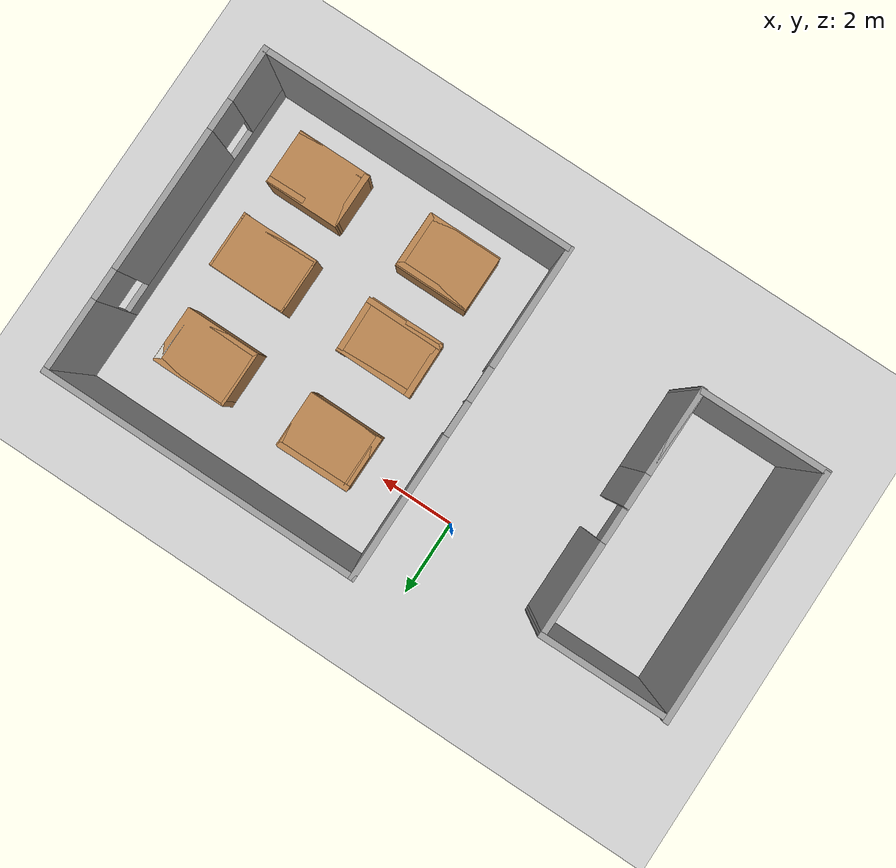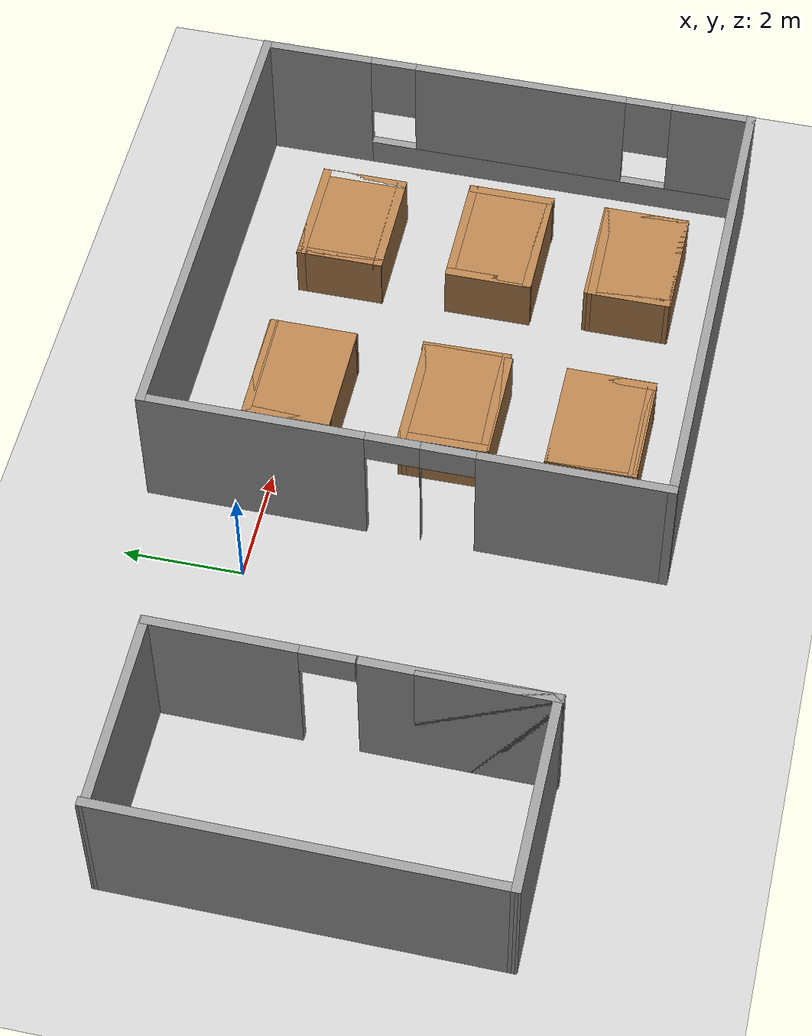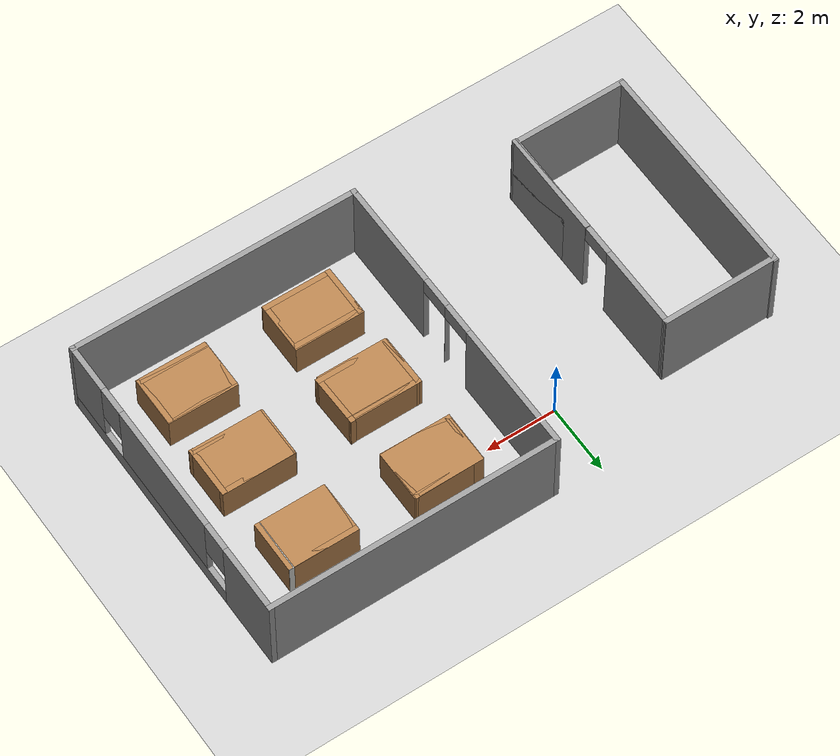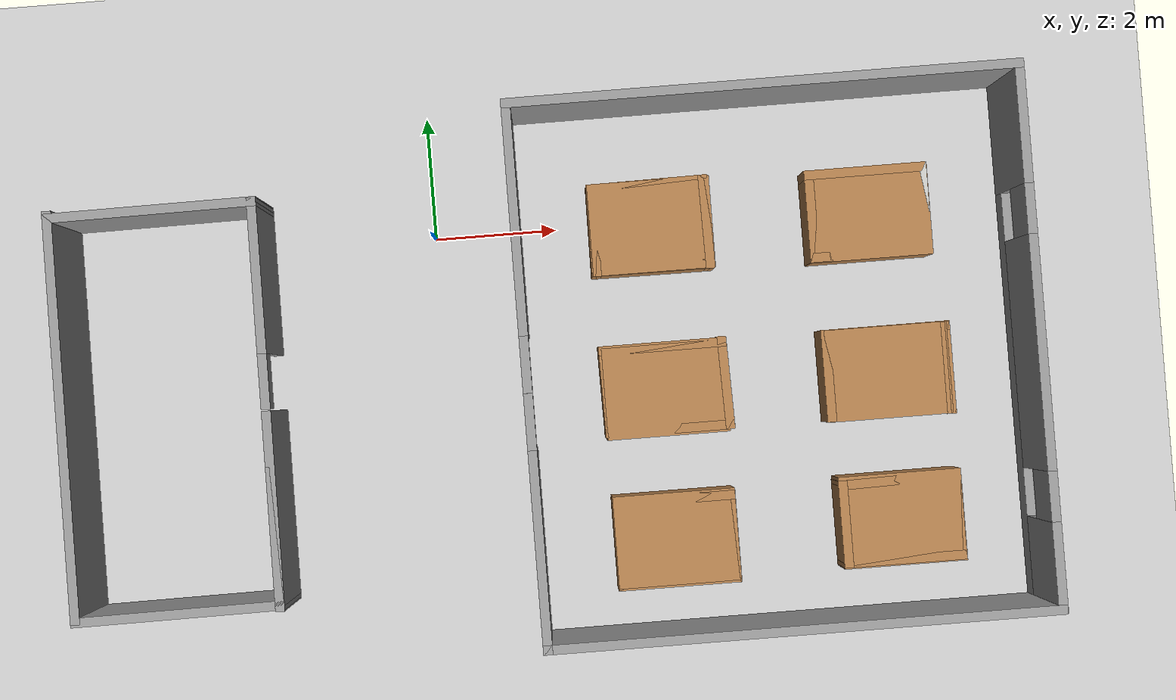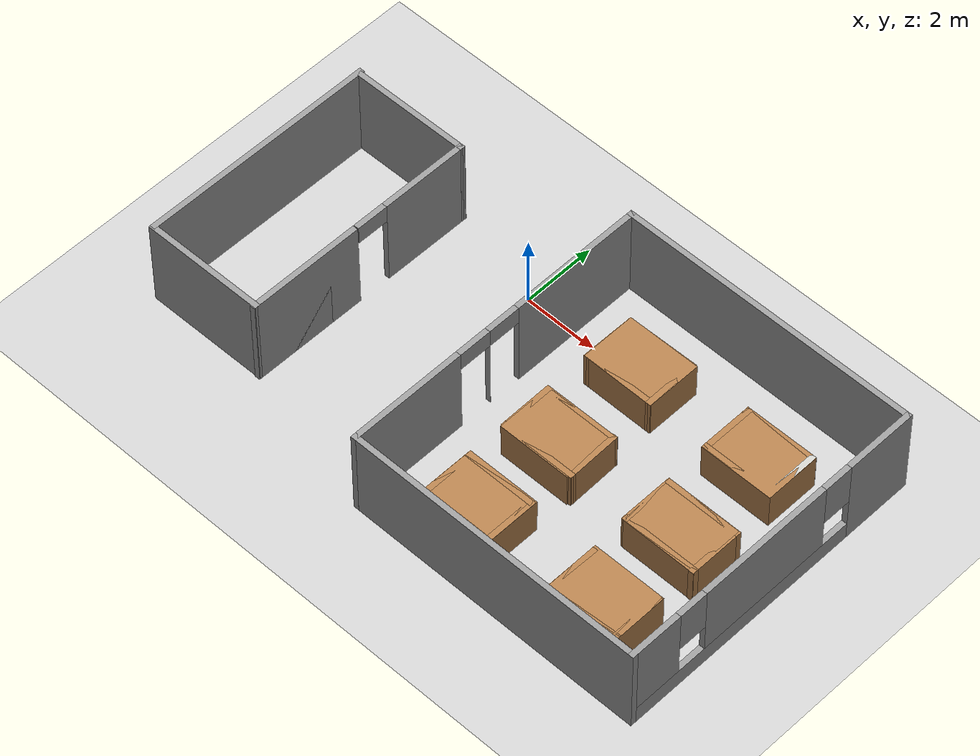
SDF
<sdf version="1.7">
 <world name="default">
  <light name="sun" type="directional">
   <pose>0 0 10 0 -0 0</pose>
   <diffuse>0.8 0.8 0.8 1</diffuse>
   <specular>0.2 0.2 0.2 1</specular>
   <attenuation>
    <range>1000</range>
    <constant>0.9</constant>
    <linear>0.01</linear>
    <quadratic>0.001</quadratic>
   </attenuation>
   <direction>-0.5 0.1 -0.9</direction>
   <spot><inner_angle>0</inner_angle><outer_angle>0</outer_angle><falloff>0</falloff></spot>
  </light>
  <model name="ground_plane">
   <static>1</static>
   <link name="link">
    <collision name="collision">
     <geometry><plane><normal>0 0 1</normal><size>100 100</size></plane></geometry>
     <surface>
      <contact><collide_bitmask>65535</collide_bitmask></contact>
      <friction><ode><mu>100</mu><mu2>50</mu2></ode></friction>
     </surface>
    </collision>
    <visual name="visual">
     <cast_shadows>0</cast_shadows>
     <geometry><plane><normal>0 0 1</normal><size>100 100</size></plane></geometry>
     <material>
      <script><uri>file://media/materials/scripts/gazebo.material</uri><name>Gazebo/Grey</name></script>
     </material>
    </visual>
   </link>
  </model>
  <gravity>0 0 -9.8</gravity>
  <magnetic_field>6e-06 2.3e-05 -4.2e-05</magnetic_field>
  <atmosphere type="adiabatic"/>
  <physics type="ode">
   <max_step_size>0.001</max_step_size>
   <real_time_factor>1</real_time_factor>
   <real_time_update_rate>1000</real_time_update_rate>
  </physics>
  <scene><ambient>0.4 0.4 0.4 1</ambient><background>0.7 0.7 0.7 1</background><shadows>1</shadows></scene>
  <spherical_coordinates>
   <surface_model>EARTH_WGS84</surface_model>
   <latitude_deg>0</latitude_deg>
   <longitude_deg>0</longitude_deg>
   <elevation>0</elevation>
   <heading_deg>0</heading_deg>
  </spherical_coordinates>
  <model name="my_factory_0">
   <pose>4.13468 -2.67349 0 0 -0 0</pose>
   <link name="Wall_0">
    <collision name="Wall_0_Collision">
     <geometry><box><size>1.50004 0.15 1</size></box></geometry>
     <pose>0 0 0.5 0 -0 0</pose>
    </collision>
    <visual name="Wall_0_Visual">
     <pose>0 0 0.5 0 -0 0</pose>
     <geometry><box><size>1.50004 0.15 1</size></box></geometry>
     <material>
      <script><uri>file://media/materials/scripts/gazebo.material</uri><name>Gazebo/Wood</name></script>
      <ambient>1 1 1 1</ambient>
     </material>
     <meta><layer>0</layer></meta>
    </visual>
    <pose>-1.52968 2.55849 0 0 -0 -1.5782</pose>
   </link>
   <link name="Wall_1">
    <collision name="Wall_1_Collision">
     <geometry><box><size>2.01003 0.15 1</size></box></geometry>
     <pose>0 0 0.5 0 -0 0</pose>
    </collision>
    <visual name="Wall_1_Visual">
     <pose>0 0 0.5 0 -0 0</pose>
     <geometry><box><size>2.01003 0.15 1</size></box></geometry>
     <material>
      <script><uri>file://media/materials/scripts/gazebo.material</uri><name>Gazebo/Wood</name></script>
      <ambient>1 1 1 1</ambient>
     </material>
     <meta><layer>0</layer></meta>
    </visual>
    <pose>-0.604678 1.87849 0 0 -0 -0.005376</pose>
   </link>
   <link name="Wall_10">
    <collision name="Wall_10_Collision">
     <geometry><box><size>1.5 0.15 1</size></box></geometry>
     <pose>0 0 0.5 0 -0 0</pose>
    </collision>
    <visual name="Wall_10_Visual">
     <pose>0 0 0.5 0 -0 0</pose>
     <geometry><box><size>1.5 0.15 1</size></box></geometry>
     <material>
      <script><uri>file://media/materials/scripts/gazebo.material</uri><name>Gazebo/Wood</name></script>
      <ambient>1 1 1 1</ambient>
     </material>
     <meta><layer>0</layer></meta>
    </visual>
    <pose>2.03532 2.50849 0 0 -0 -1.5708</pose>
   </link>
   <link name="Wall_12">
    <collision name="Wall_12_Collision">
     <geometry><box><size>1.5 0.15 1</size></box></geometry>
     <pose>0 0 0.5 0 -0 0</pose>
    </collision>
    <visual name="Wall_12_Visual">
     <pose>0 0 0.5 0 -0 0</pose>
     <geometry><box><size>1.5 0.15 1</size></box></geometry>
     <material>
      <script><uri>file://media/materials/scripts/gazebo.material</uri><name>Gazebo/Wood</name></script>
      <ambient>1 1 1 1</ambient>
     </material>
     <meta><layer>0</layer></meta>
    </visual>
    <pose>-1.52115 -0.087133 0 0 -0 -1.55871</pose>
   </link>
   <link name="Wall_13">
    <collision name="Wall_13_Collision">
     <geometry><box><size>2.10581 0.15 1</size></box></geometry>
     <pose>0 0 0.5 0 -0 0</pose>
    </collision>
    <visual name="Wall_13_Visual">
     <pose>0 0 0.5 0 -0 0</pose>
     <geometry><box><size>2.10581 0.15 1</size></box></geometry>
     <material>
      <script><uri>file://media/materials/scripts/gazebo.material</uri><name>Gazebo/Wood</name></script>
      <ambient>1 1 1 1</ambient>
     </material>
     <meta><layer>0</layer></meta>
    </visual>
    <pose>-0.53521 -0.762133 0 0 -0 -5e-05</pose>
   </link>
   <link name="Wall_14">
    <collision name="Wall_14_Collision">
     <geometry><box><size>1.5 0.15 1</size></box></geometry>
     <pose>0 0 0.5 0 -0 0</pose>
    </collision>
    <visual name="Wall_14_Visual">
     <pose>0 0 0.5 0 -0 0</pose>
     <geometry><box><size>1.5 0.15 1</size></box></geometry>
     <material>
      <script><uri>file://media/materials/scripts/gazebo.material</uri><name>Gazebo/Wood</name></script>
      <ambient>1 1 1 1</ambient>
     </material>
     <meta><layer>0</layer></meta>
    </visual>
    <pose>0.425959 -0.072178 0 0 -0 1.59541</pose>
   </link>
   <link name="Wall_15">
    <collision name="Wall_15_Collision">
     <geometry><box><size>2.08889 0.15 1</size></box></geometry>
     <pose>0 0 0.5 0 -0 0</pose>
    </collision>
    <visual name="Wall_15_Visual">
     <pose>0 0 0.5 0 -0 0</pose>
     <geometry><box><size>2.08889 0.15 1</size></box></geometry>
     <material>
      <script><uri>file://media/materials/scripts/gazebo.material</uri><name>Gazebo/Wood</name></script>
      <ambient>1 1 1 1</ambient>
     </material>
     <meta><layer>0</layer></meta>
    </visual>
    <pose>-0.55998 0.587613 0 0 -0 3.14138</pose>
   </link>
   <link name="Wall_17">
    <collision name="Wall_17_Collision">
     <geometry><box><size>1.5 0.15 1</size></box></geometry>
     <pose>0 0 0.5 0 -0 0</pose>
    </collision>
    <visual name="Wall_17_Visual">
     <pose>0 0 0.5 0 -0 0</pose>
     <geometry><box><size>1.5 0.15 1</size></box></geometry>
     <material>
      <script><uri>file://media/materials/scripts/gazebo.material</uri><name>Gazebo/Wood</name></script>
      <ambient>1 1 1 1</ambient>
     </material>
     <meta><layer>0</layer></meta>
    </visual>
    <pose>2.10253 -0.105018 0 0 -0 -1.5708</pose>
   </link>
   <link name="Wall_18">
    <collision name="Wall_18_Collision">
     <geometry><box><size>2.09221 0.15 1</size></box></geometry>
     <pose>0 0 0.5 0 -0 0</pose>
    </collision>
    <visual name="Wall_18_Visual">
     <pose>0 0 0.5 0 -0 0</pose>
     <geometry><box><size>2.09221 0.15 1</size></box></geometry>
     <material>
      <script><uri>file://media/materials/scripts/gazebo.material</uri><name>Gazebo/Wood</name></script>
      <ambient>1 1 1 1</ambient>
     </material>
     <meta><layer>0</layer></meta>
    </visual>
    <pose>3.08857 -0.780017 0 0 -0 0</pose>
   </link>
   <link name="Wall_19">
    <collision name="Wall_19_Collision">
     <geometry><box><size>1.5 0.15 1</size></box></geometry>
     <pose>0 0 0.5 0 -0 0</pose>
    </collision>
    <visual name="Wall_19_Visual">
     <pose>0 0 0.5 0 -0 0</pose>
     <geometry><box><size>1.5 0.15 1</size></box></geometry>
     <material>
      <script><uri>file://media/materials/scripts/gazebo.material</uri><name>Gazebo/Wood</name></script>
      <ambient>1 1 1 1</ambient>
     </material>
     <meta><layer>0</layer></meta>
    </visual>
    <pose>4.05941 -0.120226 0 0 -0 1.5708</pose>
   </link>
   <link name="Wall_2">
    <collision name="Wall_2_Collision">
     <geometry><box><size>1.53004 0.15 1</size></box></geometry>
     <pose>0 0 0.5 0 -0 0</pose>
    </collision>
    <visual name="Wall_2_Visual">
     <pose>0 0 0.5 0 -0 0</pose>
     <geometry><box><size>1.53004 0.15 1</size></box></geometry>
     <material>
      <script><uri>file://media/materials/scripts/gazebo.material</uri><name>Gazebo/Wood</name></script>
      <ambient>1 1 1 1</ambient>
     </material>
     <meta><layer>0</layer></meta>
    </visual>
    <pose>0.315322 2.56349 0 0 -0 1.58529</pose>
   </link>
   <link name="Wall_20">
    <collision name="Wall_20_Collision">
     <geometry><box><size>2.09221 0.15 1</size></box></geometry>
     <pose>0 0 0.5 0 -0 0</pose>
    </collision>
    <visual name="Wall_20_Visual">
     <pose>0 0 0.5 0 -0 0</pose>
     <geometry><box><size>2.09221 0.15 1</size></box></geometry>
     <material>
      <script><uri>file://media/materials/scripts/gazebo.material</uri><name>Gazebo/Wood</name></script>
      <ambient>1 1 1 1</ambient>
     </material>
     <meta><layer>0</layer></meta>
    </visual>
    <pose>3.08857 0.569983 0 0 -0 3.14159</pose>
   </link>
   <link name="Wall_22">
    <collision name="Wall_22_Collision">
     <geometry><box><size>1.5 0.15 1</size></box></geometry>
     <pose>0 0 0.5 0 -0 0</pose>
    </collision>
    <visual name="Wall_22_Visual">
     <pose>0 0 0.5 0 -0 0</pose>
     <geometry><box><size>1.5 0.15 1</size></box></geometry>
     <material>
      <script><uri>file://media/materials/scripts/gazebo.material</uri><name>Gazebo/Wood</name></script>
      <ambient>1 1 1 1</ambient>
     </material>
     <meta><layer>0</layer></meta>
    </visual>
    <pose>-1.49768 -2.57951 0 0 -0 -1.5708</pose>
   </link>
   <link name="Wall_23">
    <collision name="Wall_23_Collision">
     <geometry><box><size>2 0.15 1</size></box></geometry>
     <pose>0 0 0.5 0 -0 0</pose>
    </collision>
    <visual name="Wall_23_Visual">
     <pose>0 0 0.5 0 -0 0</pose>
     <geometry><box><size>2 0.15 1</size></box></geometry>
     <material>
      <script><uri>file://media/materials/scripts/gazebo.material</uri><name>Gazebo/Wood</name></script>
      <ambient>1 1 1 1</ambient>
     </material>
     <meta><layer>0</layer></meta>
    </visual>
    <pose>-0.572678 -3.25451 0 0 -0 0</pose>
   </link>
   <link name="Wall_24">
    <collision name="Wall_24_Collision">
     <geometry><box><size>1.5 0.15 1</size></box></geometry>
     <pose>0 0 0.5 0 -0 0</pose>
    </collision>
    <visual name="Wall_24_Visual">
     <pose>0 0 0.5 0 -0 0</pose>
     <geometry><box><size>1.5 0.15 1</size></box></geometry>
     <material>
      <script><uri>file://media/materials/scripts/gazebo.material</uri><name>Gazebo/Wood</name></script>
      <ambient>1 1 1 1</ambient>
     </material>
     <meta><layer>0</layer></meta>
    </visual>
    <pose>0.352322 -2.57951 0 0 -0 1.5708</pose>
   </link>
   <link name="Wall_25">
    <collision name="Wall_25_Collision">
     <geometry><box><size>2 0.15 1</size></box></geometry>
     <pose>0 0 0.5 0 -0 0</pose>
    </collision>
    <visual name="Wall_25_Visual">
     <pose>0 0 0.5 0 -0 0</pose>
     <geometry><box><size>2 0.15 1</size></box></geometry>
     <material>
      <script><uri>file://media/materials/scripts/gazebo.material</uri><name>Gazebo/Wood</name></script>
      <ambient>1 1 1 1</ambient>
     </material>
     <meta><layer>0</layer></meta>
    </visual>
    <pose>-0.572678 -1.90451 0 0 -0 3.14159</pose>
   </link>
   <link name="Wall_27">
    <collision name="Wall_27_Collision">
     <geometry><box><size>1.42107 0.15 1</size></box></geometry>
     <pose>0 0 0.5 0 -0 0</pose>
    </collision>
    <visual name="Wall_27_Visual">
     <pose>0 0 0.5 0 -0 0</pose>
     <geometry><box><size>1.42107 0.15 1</size></box></geometry>
     <material>
      <script><uri>file://media/materials/scripts/gazebo.material</uri><name>Gazebo/Wood</name></script>
      <ambient>1 1 1 1</ambient>
     </material>
     <meta><layer>0</layer></meta>
    </visual>
    <pose>2.19048 -2.53198 0 0 -0 -1.57104</pose>
   </link>
   <link name="Wall_28">
    <collision name="Wall_28_Collision">
     <geometry><box><size>2 0.15 1</size></box></geometry>
     <pose>0 0 0.5 0 -0 0</pose>
    </collision>
    <visual name="Wall_28_Visual">
     <pose>0 0 0.5 0 -0 0</pose>
     <geometry><box><size>2 0.15 1</size></box></geometry>
     <material>
      <script><uri>file://media/materials/scripts/gazebo.material</uri><name>Gazebo/Wood</name></script>
      <ambient>1 1 1 1</ambient>
     </material>
     <meta><layer>0</layer></meta>
    </visual>
    <pose>3.11532 -3.16951 0 0 -0 -0.002162</pose>
   </link>
   <link name="Wall_29">
    <collision name="Wall_29_Collision">
     <geometry><box><size>1.45885 0.15 1</size></box></geometry>
     <pose>0 0 0.5 0 -0 0</pose>
    </collision>
    <visual name="Wall_29_Visual">
     <pose>0 0 0.5 0 -0 0</pose>
     <geometry><box><size>1.45885 0.15 1</size></box></geometry>
     <material>
      <script><uri>file://media/materials/scripts/gazebo.material</uri><name>Gazebo/Wood</name></script>
      <ambient>1 1 1 1</ambient>
     </material>
     <meta><layer>0</layer></meta>
    </visual>
    <pose>4.04032 -2.51701 0 0 -0 1.5708</pose>
   </link>
   <link name="Wall_3">
    <collision name="Wall_3_Collision">
     <geometry><box><size>1.98011 0.15 1</size></box></geometry>
     <pose>0 0 0.5 0 -0 0</pose>
    </collision>
    <visual name="Wall_3_Visual">
     <pose>0 0 0.5 0 -0 0</pose>
     <geometry><box><size>1.98011 0.15 1</size></box></geometry>
     <material>
      <script><uri>file://media/materials/scripts/gazebo.material</uri><name>Gazebo/Wood</name></script>
      <ambient>1 1 1 1</ambient>
     </material>
     <meta><layer>0</layer></meta>
    </visual>
    <pose>-0.609678 3.24349 0 0 -0 -3.13066</pose>
   </link>
   <link name="Wall_30">
    <collision name="Wall_30_Collision">
     <geometry><box><size>2 0.15 1</size></box></geometry>
     <pose>0 0 0.5 0 -0 0</pose>
    </collision>
    <visual name="Wall_30_Visual">
     <pose>0 0 0.5 0 -0 0</pose>
     <geometry><box><size>2 0.15 1</size></box></geometry>
     <material>
      <script><uri>file://media/materials/scripts/gazebo.material</uri><name>Gazebo/Wood</name></script>
      <ambient>1 1 1 1</ambient>
     </material>
     <meta><layer>0</layer></meta>
    </visual>
    <pose>3.11548 -1.87948 0 0 -0 -3.12325</pose>
   </link>
   <link name="Wall_32">
    <collision name="Wall_32_Collision">
     <geometry><box><size>2 1.5 1</size></box></geometry>
     <pose>0 0 0.5 0 -0 0</pose>
    </collision>
    <visual name="Wall_32_Visual">
     <pose>0 0 0.5 0 -0 0</pose>
     <geometry><box><size>2 1.5 1</size></box></geometry>
     <material>
      <script><uri>file://media/materials/scripts/gazebo.material</uri><name>Gazebo/Wood</name></script>
      <ambient>1 1 1 1</ambient>
     </material>
     <meta><layer>0</layer></meta>
    </visual>
    <pose>-0.567548 -2.54565 0 0 -0 3.14159</pose>
   </link>
   <link name="Wall_34">
    <collision name="Wall_34_Collision">
     <geometry><box><size>2 1.5 1</size></box></geometry>
     <pose>0 0 0.5 0 -0 0</pose>
    </collision>
    <visual name="Wall_34_Visual">
     <pose>0 0 0.5 0 -0 0</pose>
     <geometry><box><size>2 1.5 1</size></box></geometry>
     <material>
      <script><uri>file://media/materials/scripts/gazebo.material</uri><name>Gazebo/Wood</name></script>
      <ambient>1 1 1 1</ambient>
     </material>
     <meta><layer>0</layer></meta>
    </visual>
    <pose>3.12232 -2.51251 0 0 -0 0</pose>
   </link>
   <link name="Wall_36">
    <collision name="Wall_36_Collision">
     <geometry><box><size>2 1.5 1</size></box></geometry>
     <pose>0 0 0.5 0 -0 0</pose>
    </collision>
    <visual name="Wall_36_Visual">
     <pose>0 0 0.5 0 -0 0</pose>
     <geometry><box><size>2 1.5 1</size></box></geometry>
     <material>
      <script><uri>file://media/materials/scripts/gazebo.material</uri><name>Gazebo/Wood</name></script>
      <ambient>1 1 1 1</ambient>
     </material>
     <meta><layer>0</layer></meta>
    </visual>
    <pose>2.96496 2.49763 0 0 -0 0</pose>
   </link>
   <link name="Wall_38">
    <collision name="Wall_38_Collision">
     <geometry><box><size>2 1.5 1</size></box></geometry>
     <pose>0 0 0.5 0 -0 0</pose>
    </collision>
    <visual name="Wall_38_Visual">
     <pose>0 0 0.5 0 -0 0</pose>
     <geometry><box><size>2 1.5 1</size></box></geometry>
     <material>
      <script><uri>file://media/materials/scripts/gazebo.material</uri><name>Gazebo/Wood</name></script>
      <ambient>1 1 1 1</ambient>
     </material>
     <meta><layer>0</layer></meta>
    </visual>
    <pose>-0.561678 -0.121513 0 0 -0 0</pose>
   </link>
   <link name="Wall_40">
    <collision name="Wall_40_Collision">
     <geometry><box><size>2 1.5 1</size></box></geometry>
     <pose>0 0 0.5 0 -0 0</pose>
    </collision>
    <visual name="Wall_40_Visual">
     <pose>0 0 0.5 0 -0 0</pose>
     <geometry><box><size>2 1.5 1</size></box></geometry>
     <material>
      <script><uri>file://media/materials/scripts/gazebo.material</uri><name>Gazebo/Wood</name></script>
      <ambient>1 1 1 1</ambient>
     </material>
     <meta><layer>0</layer></meta>
    </visual>
    <pose>3.08032 -0.112512 0 0 -0 0</pose>
   </link>
   <link name="Wall_42">
    <collision name="Wall_42_Collision">
     <geometry><box><size>2 1.5 1</size></box></geometry>
     <pose>0 0 0.5 0 -0 0</pose>
    </collision>
    <visual name="Wall_42_Visual">
     <pose>0 0 0.5 0 -0 0</pose>
     <geometry><box><size>2 1.5 1</size></box></geometry>
     <material>
      <script><uri>file://media/materials/scripts/gazebo.material</uri><name>Gazebo/Wood</name></script>
      <ambient>1 1 1 1</ambient>
     </material>
     <meta><layer>0</layer></meta>
    </visual>
    <pose>-0.591557 2.56093 0 0 -0 0</pose>
   </link>
   <link name="Wall_7">
    <collision name="Wall_7_Collision">
     <geometry><box><size>2 0.15 1</size></box></geometry>
     <pose>0 0 0.5 0 -0 0</pose>
    </collision>
    <visual name="Wall_7_Visual">
     <pose>0 0 0.5 0 -0 0</pose>
     <geometry><box><size>2 0.15 1</size></box></geometry>
     <material>
      <script><uri>file://media/materials/scripts/gazebo.material</uri><name>Gazebo/Wood</name></script>
      <ambient>1 1 1 1</ambient>
     </material>
     <meta><layer>0</layer></meta>
    </visual>
    <pose>2.96032 1.83349 0 0 -0 0</pose>
   </link>
   <link name="Wall_8">
    <collision name="Wall_8_Collision">
     <geometry><box><size>1.5 0.15 1</size></box></geometry>
     <pose>0 0 0.5 0 -0 0</pose>
    </collision>
    <visual name="Wall_8_Visual">
     <pose>0 0 0.5 0 -0 0</pose>
     <geometry><box><size>1.5 0.15 1</size></box></geometry>
     <material>
      <script><uri>file://media/materials/scripts/gazebo.material</uri><name>Gazebo/CeilingTiled</name></script>
      <ambient>1 1 1 1</ambient>
     </material>
     <meta><layer>0</layer></meta>
    </visual>
    <pose>3.88532 2.50849 0 0 -0 1.5708</pose>
   </link>
   <link name="Wall_9">
    <collision name="Wall_9_Collision">
     <geometry><box><size>2 0.15 1</size></box></geometry>
     <pose>0 0 0.5 0 -0 0</pose>
    </collision>
    <visual name="Wall_9_Visual">
     <pose>0 0 0.5 0 -0 0</pose>
     <geometry><box><size>2 0.15 1</size></box></geometry>
     <material>
      <script><uri>file://media/materials/scripts/gazebo.material</uri><name>Gazebo/Wood</name></script>
      <ambient>1 1 1 1</ambient>
     </material>
     <meta><layer>0</layer></meta>
    </visual>
    <pose>2.96032 3.18349 0 0 -0 3.14159</pose>
   </link>
   <static>1</static>
  </model>
  <model name="my_factory">
   <link name="Wall_0">
    <pose>-6.08439 3.06531 0 0 -0 0.006251</pose>
    <visual name="Wall_0_Visual">
     <pose>0 0 1.25 0 -0 0</pose>
     <geometry><box><size>3.36779 0.15 2.5</size></box></geometry>
     <material>
      <script><uri>file://media/materials/scripts/gazebo.material</uri><name>Gazebo/Grey</name></script>
      <ambient>1 1 1 1</ambient>
      <shader type="pixel"/>
     </material>
     <meta><layer>0</layer></meta>
    </visual>
    <collision name="Wall_0_Collision">
     <pose>0 0 1.25 0 -0 0</pose>
     <geometry><box><size>3.36779 0.15 2.5</size></box></geometry>
     <surface>
      <friction>
       <ode><mu>1</mu><mu2>1</mu2><fdir1>0 0 0</fdir1><slip1>0</slip1><slip2>0</slip2></ode>
       <torsional>
        <coefficient>1</coefficient>
        <patch_radius>0</patch_radius>
        <surface_radius>0</surface_radius>
        <use_patch_radius>1</use_patch_radius>
        <ode><slip>0</slip></ode>
       </torsional>
      </friction>
      <bounce><restitution_coefficient>0</restitution_coefficient><threshold>1e+06</threshold></bounce>
      <contact>
       <collide_without_contact>0</collide_without_contact>
       <collide_without_contact_bitmask>1</collide_without_contact_bitmask>
       <collide_bitmask>1</collide_bitmask>
       <ode>
        <soft_cfm>0</soft_cfm>
        <soft_erp>0.2</soft_erp>
        <kp>1e+13</kp>
        <kd>1</kd>
        <max_vel>0.01</max_vel>
        <min_depth>0</min_depth>
       </ode>
       <bullet>
        <split_impulse>1</split_impulse>
        <split_impulse_penetration_threshold>-0.01</split_impulse_penetration_threshold>
        <soft_cfm>0</soft_cfm>
        <soft_erp>0.2</soft_erp>
        <kp>1e+13</kp>
        <kd>1</kd>
       </bullet>
      </contact>
     </surface>
    </collision>
   </link>
   <link name="Wall_1">
    <pose>-4.49073 -0.119515 0 0 0 -1.57559</pose>
    <visual name="Wall_1_Visual_0">
     <pose>-2.02411 0 1.25 0 -0 0</pose>
     <geometry><box><size>2.45141 0.15 2.5</size></box></geometry>
     <material>
      <script><uri>file://media/materials/scripts/gazebo.material</uri><name>Gazebo/Grey</name></script>
      <ambient>1 1 1 1</ambient>
      <shader type="pixel"/>
     </material>
     <meta><layer>0</layer></meta>
    </visual>
    <visual name="Wall_1_Visual_1">
     <pose>1.6757 0 1.25 0 -0 0</pose>
     <geometry><box><size>3.14821 0.15 2.5</size></box></geometry>
     <material>
      <script><uri>file://media/materials/scripts/gazebo.material</uri><name>Gazebo/Grey</name></script>
      <ambient>1 1 1 1</ambient>
      <shader type="pixel"/>
     </material>
     <meta><layer>0</layer></meta>
    </visual>
    <visual name="Wall_1_Visual_2">
     <pose>2.11518 0 1.25 0 -0 0</pose>
     <geometry><box><size>2.26926 0.15 2.5</size></box></geometry>
     <material>
      <script><uri>file://media/materials/scripts/gazebo.material</uri><name>Gazebo/Grey</name></script>
      <ambient>1 1 1 1</ambient>
      <shader type="pixel"/>
     </material>
     <meta><layer>0</layer></meta>
    </visual>
    <visual name="Wall_1_Visual_3">
     <pose>-0.358925 0 2.25 0 -0 0</pose>
     <geometry><box><size>0.878953 0.15 0.5</size></box></geometry>
     <material>
      <script><uri>file://media/materials/scripts/gazebo.material</uri><name>Gazebo/Grey</name></script>
      <ambient>1 1 1 1</ambient>
      <shader type="pixel"/>
     </material>
     <meta><layer>0</layer></meta>
    </visual>
    <collision name="Wall_1_Collision_0">
     <pose>-2.02411 0 1.25 0 -0 0</pose>
     <geometry><box><size>2.45141 0.15 2.5</size></box></geometry>
     <surface>
      <friction>
       <ode><mu>1</mu><mu2>1</mu2><fdir1>0 0 0</fdir1><slip1>0</slip1><slip2>0</slip2></ode>
       <torsional>
        <coefficient>1</coefficient>
        <patch_radius>0</patch_radius>
        <surface_radius>0</surface_radius>
        <use_patch_radius>1</use_patch_radius>
        <ode><slip>0</slip></ode>
       </torsional>
      </friction>
      <bounce><restitution_coefficient>0</restitution_coefficient><threshold>1e+06</threshold></bounce>
      <contact>
       <collide_without_contact>0</collide_without_contact>
       <collide_without_contact_bitmask>1</collide_without_contact_bitmask>
       <collide_bitmask>1</collide_bitmask>
       <ode>
        <soft_cfm>0</soft_cfm>
        <soft_erp>0.2</soft_erp>
        <kp>1e+13</kp>
        <kd>1</kd>
        <max_vel>0.01</max_vel>
        <min_depth>0</min_depth>
       </ode>
       <bullet>
        <split_impulse>1</split_impulse>
        <split_impulse_penetration_threshold>-0.01</split_impulse_penetration_threshold>
        <soft_cfm>0</soft_cfm>
        <soft_erp>0.2</soft_erp>
        <kp>1e+13</kp>
        <kd>1</kd>
       </bullet>
      </contact>
     </surface>
    </collision>
    <collision name="Wall_1_Collision_1">
     <pose>1.6757 0 1.25 0 -0 0</pose>
     <geometry><box><size>3.14821 0.15 2.5</size></box></geometry>
     <surface>
      <friction>
       <ode><mu>1</mu><mu2>1</mu2><fdir1>0 0 0</fdir1><slip1>0</slip1><slip2>0</slip2></ode>
       <torsional>
        <coefficient>1</coefficient>
        <patch_radius>0</patch_radius>
        <surface_radius>0</surface_radius>
        <use_patch_radius>1</use_patch_radius>
        <ode><slip>0</slip></ode>
       </torsional>
      </friction>
      <bounce><restitution_coefficient>0</restitution_coefficient><threshold>1e+06</threshold></bounce>
      <contact>
       <collide_without_contact>0</collide_without_contact>
       <collide_without_contact_bitmask>1</collide_without_contact_bitmask>
       <collide_bitmask>1</collide_bitmask>
       <ode>
        <soft_cfm>0</soft_cfm>
        <soft_erp>0.2</soft_erp>
        <kp>1e+13</kp>
        <kd>1</kd>
        <max_vel>0.01</max_vel>
        <min_depth>0</min_depth>
       </ode>
       <bullet>
        <split_impulse>1</split_impulse>
        <split_impulse_penetration_threshold>-0.01</split_impulse_penetration_threshold>
        <soft_cfm>0</soft_cfm>
        <soft_erp>0.2</soft_erp>
        <kp>1e+13</kp>
        <kd>1</kd>
       </bullet>
      </contact>
     </surface>
    </collision>
    <collision name="Wall_1_Collision_3">
     <pose>-0.358925 0 2.25 0 -0 0</pose>
     <geometry><box><size>0.878953 0.15 0.5</size></box></geometry>
     <surface>
      <friction>
       <ode><mu>1</mu><mu2>1</mu2><fdir1>0 0 0</fdir1><slip1>0</slip1><slip2>0</slip2></ode>
       <torsional>
        <coefficient>1</coefficient>
        <patch_radius>0</patch_radius>
        <surface_radius>0</surface_radius>
        <use_patch_radius>1</use_patch_radius>
        <ode><slip>0</slip></ode>
       </torsional>
      </friction>
      <bounce><restitution_coefficient>0</restitution_coefficient><threshold>1e+06</threshold></bounce>
      <contact>
       <collide_without_contact>0</collide_without_contact>
       <collide_without_contact_bitmask>1</collide_without_contact_bitmask>
       <collide_bitmask>1</collide_bitmask>
       <ode>
        <soft_cfm>0</soft_cfm>
        <soft_erp>0.2</soft_erp>
        <kp>1e+13</kp>
        <kd>1</kd>
        <max_vel>0.01</max_vel>
        <min_depth>0</min_depth>
       </ode>
       <bullet>
        <split_impulse>1</split_impulse>
        <split_impulse_penetration_threshold>-0.01</split_impulse_penetration_threshold>
        <soft_cfm>0</soft_cfm>
        <soft_erp>0.2</soft_erp>
        <kp>1e+13</kp>
        <kd>1</kd>
       </bullet>
      </contact>
     </surface>
    </collision>
    <collision name="Wall_1_Collision_2">
     <pose>2.11518 0 1.25 0 -0 0</pose>
     <geometry><box><size>2.26926 0.15 2.5</size></box></geometry>
     <surface>
      <friction>
       <ode><mu>1</mu><mu2>1</mu2><fdir1>0 0 0</fdir1><slip1>0</slip1><slip2>0</slip2></ode>
       <torsional>
        <coefficient>1</coefficient>
        <patch_radius>0</patch_radius>
        <surface_radius>0</surface_radius>
        <use_patch_radius>1</use_patch_radius>
        <ode><slip>0</slip></ode>
       </torsional>
      </friction>
      <bounce><restitution_coefficient>0</restitution_coefficient><threshold>1e+06</threshold></bounce>
      <contact>
       <collide_without_contact>0</collide_without_contact>
       <collide_without_contact_bitmask>1</collide_without_contact_bitmask>
       <collide_bitmask>1</collide_bitmask>
       <ode>
        <soft_cfm>0</soft_cfm>
        <soft_erp>0.2</soft_erp>
        <kp>1e+13</kp>
        <kd>1</kd>
        <max_vel>0.01</max_vel>
        <min_depth>0</min_depth>
       </ode>
       <bullet>
        <split_impulse>1</split_impulse>
        <split_impulse_penetration_threshold>-0.01</split_impulse_penetration_threshold>
        <soft_cfm>0</soft_cfm>
        <soft_erp>0.2</soft_erp>
        <kp>1e+13</kp>
        <kd>1</kd>
       </bullet>
      </contact>
     </surface>
    </collision>
   </link>
   <link name="Wall_2">
    <pose>-6.11481 -3.28423 0 0 0 -3.13534</pose>
    <visual name="Wall_2_Visual">
     <pose>0 0 1.25 0 -0 0</pose>
     <geometry><box><size>3.36779 0.15 2.5</size></box></geometry>
     <material>
      <script><uri>file://media/materials/scripts/gazebo.material</uri><name>Gazebo/Grey</name></script>
      <ambient>1 1 1 1</ambient>
      <shader type="pixel"/>
     </material>
     <meta><layer>0</layer></meta>
    </visual>
    <collision name="Wall_2_Collision">
     <pose>0 0 1.25 0 -0 0</pose>
     <geometry><box><size>3.36779 0.15 2.5</size></box></geometry>
     <surface>
      <friction>
       <ode><mu>1</mu><mu2>1</mu2><fdir1>0 0 0</fdir1><slip1>0</slip1><slip2>0</slip2></ode>
       <torsional>
        <coefficient>1</coefficient>
        <patch_radius>0</patch_radius>
        <surface_radius>0</surface_radius>
        <use_patch_radius>1</use_patch_radius>
        <ode><slip>0</slip></ode>
       </torsional>
      </friction>
      <bounce><restitution_coefficient>0</restitution_coefficient><threshold>1e+06</threshold></bounce>
      <contact>
       <collide_without_contact>0</collide_without_contact>
       <collide_without_contact_bitmask>1</collide_without_contact_bitmask>
       <collide_bitmask>1</collide_bitmask>
       <ode>
        <soft_cfm>0</soft_cfm>
        <soft_erp>0.2</soft_erp>
        <kp>1e+13</kp>
        <kd>1</kd>
        <max_vel>0.01</max_vel>
        <min_depth>0</min_depth>
       </ode>
       <bullet>
        <split_impulse>1</split_impulse>
        <split_impulse_penetration_threshold>-0.01</split_impulse_penetration_threshold>
        <soft_cfm>0</soft_cfm>
        <soft_erp>0.2</soft_erp>
        <kp>1e+13</kp>
        <kd>1</kd>
       </bullet>
      </contact>
     </surface>
    </collision>
   </link>
   <link name="Wall_3">
    <pose>-7.70846 -0.079288 0 0 -0 1.56601</pose>
    <visual name="Wall_3_Visual">
     <pose>0 0 1.25 0 -0 0</pose>
     <geometry><box><size>6.49962 0.15 2.5</size></box></geometry>
     <material>
      <script><uri>file://media/materials/scripts/gazebo.material</uri><name>Gazebo/Grey</name></script>
      <ambient>1 1 1 1</ambient>
      <shader type="pixel"/>
     </material>
     <meta><layer>0</layer></meta>
    </visual>
    <collision name="Wall_3_Collision">
     <pose>0 0 1.25 0 -0 0</pose>
     <geometry><box><size>6.49962 0.15 2.5</size></box></geometry>
     <surface>
      <friction>
       <ode><mu>1</mu><mu2>1</mu2><fdir1>0 0 0</fdir1><slip1>0</slip1><slip2>0</slip2></ode>
       <torsional>
        <coefficient>1</coefficient>
        <patch_radius>0</patch_radius>
        <surface_radius>0</surface_radius>
        <use_patch_radius>1</use_patch_radius>
        <ode><slip>0</slip></ode>
       </torsional>
      </friction>
      <bounce><restitution_coefficient>0</restitution_coefficient><threshold>1e+06</threshold></bounce>
      <contact>
       <collide_without_contact>0</collide_without_contact>
       <collide_without_contact_bitmask>1</collide_without_contact_bitmask>
       <collide_bitmask>1</collide_bitmask>
       <ode>
        <soft_cfm>0</soft_cfm>
        <soft_erp>0.2</soft_erp>
        <kp>1e+13</kp>
        <kd>1</kd>
        <max_vel>0.01</max_vel>
        <min_depth>0</min_depth>
       </ode>
       <bullet>
        <split_impulse>1</split_impulse>
        <split_impulse_penetration_threshold>-0.01</split_impulse_penetration_threshold>
        <soft_cfm>0</soft_cfm>
        <soft_erp>0.2</soft_erp>
        <kp>1e+13</kp>
        <kd>1</kd>
       </bullet>
      </contact>
     </surface>
    </collision>
   </link>
   <link name="Wall_5">
    <pose>3.67413 4.3 0 0 -0 0</pose>
    <visual name="Wall_5_Visual">
     <pose>0 0 1.25 0 -0 0</pose>
     <geometry><box><size>8.25 0.15 2.5</size></box></geometry>
     <material>
      <script><uri>file://media/materials/scripts/gazebo.material</uri><name>Gazebo/Grey</name></script>
      <ambient>1 1 1 1</ambient>
      <shader type="pixel"/>
     </material>
     <meta><layer>0</layer></meta>
    </visual>
    <collision name="Wall_5_Collision">
     <pose>0 0 1.25 0 -0 0</pose>
     <geometry><box><size>8.25 0.15 2.5</size></box></geometry>
     <surface>
      <friction>
       <ode><mu>1</mu><mu2>1</mu2><fdir1>0 0 0</fdir1><slip1>0</slip1><slip2>0</slip2></ode>
       <torsional>
        <coefficient>1</coefficient>
        <patch_radius>0</patch_radius>
        <surface_radius>0</surface_radius>
        <use_patch_radius>1</use_patch_radius>
        <ode><slip>0</slip></ode>
       </torsional>
      </friction>
      <bounce><restitution_coefficient>0</restitution_coefficient><threshold>1e+06</threshold></bounce>
      <contact>
       <collide_without_contact>0</collide_without_contact>
       <collide_without_contact_bitmask>1</collide_without_contact_bitmask>
       <collide_bitmask>1</collide_bitmask>
       <ode>
        <soft_cfm>0</soft_cfm>
        <soft_erp>0.2</soft_erp>
        <kp>1e+13</kp>
        <kd>1</kd>
        <max_vel>0.01</max_vel>
        <min_depth>0</min_depth>
       </ode>
       <bullet>
        <split_impulse>1</split_impulse>
        <split_impulse_penetration_threshold>-0.01</split_impulse_penetration_threshold>
        <soft_cfm>0</soft_cfm>
        <soft_erp>0.2</soft_erp>
        <kp>1e+13</kp>
        <kd>1</kd>
       </bullet>
      </contact>
     </surface>
    </collision>
   </link>
   <link name="Wall_6">
    <pose>7.72413 0 0 0 0 -1.5708</pose>
    <visual name="Wall_6_Visual_0">
     <pose>-3.39254 0 1.25 0 -0 0</pose>
     <geometry><box><size>1.96493 0.15 2.5</size></box></geometry>
     <material>
      <script><uri>file://media/materials/scripts/gazebo.material</uri><name>Gazebo/Grey</name></script>
      <ambient>1 1 1 1</ambient>
      <shader type="pixel"/>
     </material>
     <meta><layer>0</layer></meta>
    </visual>
    <visual name="Wall_6_Visual_1">
     <pose>0.982465 0 0.25 0 -0 0</pose>
     <geometry><box><size>6.78507 0.15 0.5</size></box></geometry>
     <material>
      <script><uri>file://media/materials/scripts/gazebo.material</uri><name>Gazebo/Grey</name></script>
      <ambient>1 1 1 1</ambient>
      <shader type="pixel"/>
     </material>
     <meta><layer>0</layer></meta>
    </visual>
    <visual name="Wall_6_Visual_3">
     <pose>3.64927 0 1.5 0 -0 0</pose>
     <geometry><box><size>1.45147 0.15 2</size></box></geometry>
     <material>
      <script><uri>file://media/materials/scripts/gazebo.material</uri><name>Gazebo/Grey</name></script>
      <ambient>1 1 1 1</ambient>
      <shader type="pixel"/>
     </material>
     <meta><layer>0</layer></meta>
    </visual>
    <visual name="Wall_6_Visual_2">
     <pose>0.25673 0 1.5 0 -0 0</pose>
     <geometry><box><size>3.7336 0.15 2</size></box></geometry>
     <material>
      <script><uri>file://media/materials/scripts/gazebo.material</uri><name>Gazebo/Grey</name></script>
      <ambient>1 1 1 1</ambient>
      <shader type="pixel"/>
     </material>
     <meta><layer>0</layer></meta>
    </visual>
    <visual name="Wall_6_Visual_4">
     <pose>-2.01007 0 1.9 0 -0 0</pose>
     <geometry><box><size>0.8 0.15 1.2</size></box></geometry>
     <material>
      <script><uri>file://media/materials/scripts/gazebo.material</uri><name>Gazebo/Grey</name></script>
      <ambient>1 1 1 1</ambient>
      <shader type="pixel"/>
     </material>
     <meta><layer>0</layer></meta>
    </visual>
    <visual name="Wall_6_Visual_5">
     <pose>2.52353 0 1.9 0 -0 0</pose>
     <geometry><box><size>0.8 0.15 1.2</size></box></geometry>
     <material>
      <script><uri>file://media/materials/scripts/gazebo.material</uri><name>Gazebo/Grey</name></script>
      <ambient>1 1 1 1</ambient>
      <shader type="pixel"/>
     </material>
     <meta><layer>0</layer></meta>
    </visual>
    <collision name="Wall_6_Collision_0">
     <pose>-3.39254 0 1.25 0 -0 0</pose>
     <geometry><box><size>1.96493 0.15 2.5</size></box></geometry>
     <surface>
      <friction>
       <ode><mu>1</mu><mu2>1</mu2><fdir1>0 0 0</fdir1><slip1>0</slip1><slip2>0</slip2></ode>
       <torsional>
        <coefficient>1</coefficient>
        <patch_radius>0</patch_radius>
        <surface_radius>0</surface_radius>
        <use_patch_radius>1</use_patch_radius>
        <ode><slip>0</slip></ode>
       </torsional>
      </friction>
      <bounce><restitution_coefficient>0</restitution_coefficient><threshold>1e+06</threshold></bounce>
      <contact>
       <collide_without_contact>0</collide_without_contact>
       <collide_without_contact_bitmask>1</collide_without_contact_bitmask>
       <collide_bitmask>1</collide_bitmask>
       <ode>
        <soft_cfm>0</soft_cfm>
        <soft_erp>0.2</soft_erp>
        <kp>1e+13</kp>
        <kd>1</kd>
        <max_vel>0.01</max_vel>
        <min_depth>0</min_depth>
       </ode>
       <bullet>
        <split_impulse>1</split_impulse>
        <split_impulse_penetration_threshold>-0.01</split_impulse_penetration_threshold>
        <soft_cfm>0</soft_cfm>
        <soft_erp>0.2</soft_erp>
        <kp>1e+13</kp>
        <kd>1</kd>
       </bullet>
      </contact>
     </surface>
    </collision>
    <collision name="Wall_6_Collision_1">
     <pose>0.982465 0 0.25 0 -0 0</pose>
     <geometry><box><size>6.78507 0.15 0.5</size></box></geometry>
     <surface>
      <friction>
       <ode><mu>1</mu><mu2>1</mu2><fdir1>0 0 0</fdir1><slip1>0</slip1><slip2>0</slip2></ode>
       <torsional>
        <coefficient>1</coefficient>
        <patch_radius>0</patch_radius>
        <surface_radius>0</surface_radius>
        <use_patch_radius>1</use_patch_radius>
        <ode><slip>0</slip></ode>
       </torsional>
      </friction>
      <bounce><restitution_coefficient>0</restitution_coefficient><threshold>1e+06</threshold></bounce>
      <contact>
       <collide_without_contact>0</collide_without_contact>
       <collide_without_contact_bitmask>1</collide_without_contact_bitmask>
       <collide_bitmask>1</collide_bitmask>
       <ode>
        <soft_cfm>0</soft_cfm>
        <soft_erp>0.2</soft_erp>
        <kp>1e+13</kp>
        <kd>1</kd>
        <max_vel>0.01</max_vel>
        <min_depth>0</min_depth>
       </ode>
       <bullet>
        <split_impulse>1</split_impulse>
        <split_impulse_penetration_threshold>-0.01</split_impulse_penetration_threshold>
        <soft_cfm>0</soft_cfm>
        <soft_erp>0.2</soft_erp>
        <kp>1e+13</kp>
        <kd>1</kd>
       </bullet>
      </contact>
     </surface>
    </collision>
    <collision name="Wall_6_Collision_2">
     <pose>0.25673 0 1.5 0 -0 0</pose>
     <geometry><box><size>3.7336 0.15 2</size></box></geometry>
     <surface>
      <friction>
       <ode><mu>1</mu><mu2>1</mu2><fdir1>0 0 0</fdir1><slip1>0</slip1><slip2>0</slip2></ode>
       <torsional>
        <coefficient>1</coefficient>
        <patch_radius>0</patch_radius>
        <surface_radius>0</surface_radius>
        <use_patch_radius>1</use_patch_radius>
        <ode><slip>0</slip></ode>
       </torsional>
      </friction>
      <bounce><restitution_coefficient>0</restitution_coefficient><threshold>1e+06</threshold></bounce>
      <contact>
       <collide_without_contact>0</collide_without_contact>
       <collide_without_contact_bitmask>1</collide_without_contact_bitmask>
       <collide_bitmask>1</collide_bitmask>
       <ode>
        <soft_cfm>0</soft_cfm>
        <soft_erp>0.2</soft_erp>
        <kp>1e+13</kp>
        <kd>1</kd>
        <max_vel>0.01</max_vel>
        <min_depth>0</min_depth>
       </ode>
       <bullet>
        <split_impulse>1</split_impulse>
        <split_impulse_penetration_threshold>-0.01</split_impulse_penetration_threshold>
        <soft_cfm>0</soft_cfm>
        <soft_erp>0.2</soft_erp>
        <kp>1e+13</kp>
        <kd>1</kd>
       </bullet>
      </contact>
     </surface>
    </collision>
    <collision name="Wall_6_Collision_3">
     <pose>3.64927 0 1.5 0 -0 0</pose>
     <geometry><box><size>1.45147 0.15 2</size></box></geometry>
     <surface>
      <friction>
       <ode><mu>1</mu><mu2>1</mu2><fdir1>0 0 0</fdir1><slip1>0</slip1><slip2>0</slip2></ode>
       <torsional>
        <coefficient>1</coefficient>
        <patch_radius>0</patch_radius>
        <surface_radius>0</surface_radius>
        <use_patch_radius>1</use_patch_radius>
        <ode><slip>0</slip></ode>
       </torsional>
      </friction>
      <bounce><restitution_coefficient>0</restitution_coefficient><threshold>1e+06</threshold></bounce>
      <contact>
       <collide_without_contact>0</collide_without_contact>
       <collide_without_contact_bitmask>1</collide_without_contact_bitmask>
       <collide_bitmask>1</collide_bitmask>
       <ode>
        <soft_cfm>0</soft_cfm>
        <soft_erp>0.2</soft_erp>
        <kp>1e+13</kp>
        <kd>1</kd>
        <max_vel>0.01</max_vel>
        <min_depth>0</min_depth>
       </ode>
       <bullet>
        <split_impulse>1</split_impulse>
        <split_impulse_penetration_threshold>-0.01</split_impulse_penetration_threshold>
        <soft_cfm>0</soft_cfm>
        <soft_erp>0.2</soft_erp>
        <kp>1e+13</kp>
        <kd>1</kd>
       </bullet>
      </contact>
     </surface>
    </collision>
    <collision name="Wall_6_Collision_4">
     <pose>-2.01007 0 1.9 0 -0 0</pose>
     <geometry><box><size>0.8 0.15 1.2</size></box></geometry>
     <surface>
      <friction>
       <ode><mu>1</mu><mu2>1</mu2><fdir1>0 0 0</fdir1><slip1>0</slip1><slip2>0</slip2></ode>
       <torsional>
        <coefficient>1</coefficient>
        <patch_radius>0</patch_radius>
        <surface_radius>0</surface_radius>
        <use_patch_radius>1</use_patch_radius>
        <ode><slip>0</slip></ode>
       </torsional>
      </friction>
      <bounce><restitution_coefficient>0</restitution_coefficient><threshold>1e+06</threshold></bounce>
      <contact>
       <collide_without_contact>0</collide_without_contact>
       <collide_without_contact_bitmask>1</collide_without_contact_bitmask>
       <collide_bitmask>1</collide_bitmask>
       <ode>
        <soft_cfm>0</soft_cfm>
        <soft_erp>0.2</soft_erp>
        <kp>1e+13</kp>
        <kd>1</kd>
        <max_vel>0.01</max_vel>
        <min_depth>0</min_depth>
       </ode>
       <bullet>
        <split_impulse>1</split_impulse>
        <split_impulse_penetration_threshold>-0.01</split_impulse_penetration_threshold>
        <soft_cfm>0</soft_cfm>
        <soft_erp>0.2</soft_erp>
        <kp>1e+13</kp>
        <kd>1</kd>
       </bullet>
      </contact>
     </surface>
    </collision>
    <collision name="Wall_6_Collision_5">
     <pose>2.52353 0 1.9 0 -0 0</pose>
     <geometry><box><size>0.8 0.15 1.2</size></box></geometry>
     <surface>
      <friction>
       <ode><mu>1</mu><mu2>1</mu2><fdir1>0 0 0</fdir1><slip1>0</slip1><slip2>0</slip2></ode>
       <torsional>
        <coefficient>1</coefficient>
        <patch_radius>0</patch_radius>
        <surface_radius>0</surface_radius>
        <use_patch_radius>1</use_patch_radius>
        <ode><slip>0</slip></ode>
       </torsional>
      </friction>
      <bounce><restitution_coefficient>0</restitution_coefficient><threshold>1e+06</threshold></bounce>
      <contact>
       <collide_without_contact>0</collide_without_contact>
       <collide_without_contact_bitmask>1</collide_without_contact_bitmask>
       <collide_bitmask>1</collide_bitmask>
       <ode>
        <soft_cfm>0</soft_cfm>
        <soft_erp>0.2</soft_erp>
        <kp>1e+13</kp>
        <kd>1</kd>
        <max_vel>0.01</max_vel>
        <min_depth>0</min_depth>
       </ode>
       <bullet>
        <split_impulse>1</split_impulse>
        <split_impulse_penetration_threshold>-0.01</split_impulse_penetration_threshold>
        <soft_cfm>0</soft_cfm>
        <soft_erp>0.2</soft_erp>
        <kp>1e+13</kp>
        <kd>1</kd>
       </bullet>
      </contact>
     </surface>
    </collision>
   </link>
   <link name="Wall_7">
    <pose>3.67413 -4.3 0 0 -0 3.14159</pose>
    <inertial>
     <mass>1</mass>
     <inertia><ixx>1</ixx><ixy>0</ixy><ixz>0</ixz><iyy>1</iyy><iyz>0</iyz><izz>1</izz></inertia>
    </inertial>
    <visual name="Wall_7_Visual">
     <pose>0 0 1.25 0 -0 0</pose>
     <geometry><box><size>8.25 0.15 2.5</size></box></geometry>
     <material>
      <script><uri>file://media/materials/scripts/gazebo.material</uri><name>Gazebo/Grey</name></script>
      <ambient>1 1 1 1</ambient>
      <shader type="pixel"><normal_map>__default__</normal_map></shader>
     </material>
     <meta><layer>0</layer></meta>
    </visual>
    <collision name="Wall_7_Collision">
     <pose>0 0 1.25 0 -0 0</pose>
     <geometry><box><size>8.25 0.15 2.5</size></box></geometry>
     <surface>
      <friction>
       <ode><mu>1</mu><mu2>1</mu2><fdir1>0 0 0</fdir1><slip1>0</slip1><slip2>0</slip2></ode>
       <torsional>
        <coefficient>1</coefficient>
        <patch_radius>0</patch_radius>
        <surface_radius>0</surface_radius>
        <use_patch_radius>1</use_patch_radius>
        <ode><slip>0</slip></ode>
       </torsional>
      </friction>
      <bounce><restitution_coefficient>0</restitution_coefficient><threshold>1e+06</threshold></bounce>
      <contact>
       <collide_without_contact>0</collide_without_contact>
       <collide_without_contact_bitmask>1</collide_without_contact_bitmask>
       <collide_bitmask>1</collide_bitmask>
       <ode>
        <soft_cfm>0</soft_cfm>
        <soft_erp>0.2</soft_erp>
        <kp>1e+13</kp>
        <kd>1</kd>
        <max_vel>0.01</max_vel>
        <min_depth>0</min_depth>
       </ode>
       <bullet>
        <split_impulse>1</split_impulse>
        <split_impulse_penetration_threshold>-0.01</split_impulse_penetration_threshold>
        <soft_cfm>0</soft_cfm>
        <soft_erp>0.2</soft_erp>
        <kp>1e+13</kp>
        <kd>1</kd>
       </bullet>
      </contact>
     </surface>
    </collision>
   </link>
   <link name="Wall_8">
    <pose>-0.375866 0 0 0 -0 1.5708</pose>
    <visual name="Wall_8_Visual_0">
     <pose>-2.77217 0 1.25 0 -0 0</pose>
     <geometry><box><size>3.20566 0.15 2.5</size></box></geometry>
     <material>
      <script><uri>file://media/materials/scripts/gazebo.material</uri><name>Gazebo/Grey</name></script>
      <ambient>1 1 1 1</ambient>
      <shader type="pixel"/>
     </material>
     <meta><layer>0</layer></meta>
    </visual>
    <visual name="Wall_8_Visual_1">
     <pose>-0.268295 0 1.25 0 -0 0</pose>
     <geometry><box><size>0.002094 0.15 2.5</size></box></geometry>
     <material>
      <script><uri>file://media/materials/scripts/gazebo.material</uri><name>Gazebo/Grey</name></script>
      <ambient>1 1 1 1</ambient>
      <shader type="pixel"/>
     </material>
     <meta><layer>0</layer></meta>
    </visual>
    <visual name="Wall_8_Visual_2">
     <pose>2.50388 0 1.25 0 -0 0</pose>
     <geometry><box><size>3.74225 0.15 2.5</size></box></geometry>
     <material>
      <script><uri>file://media/materials/scripts/gazebo.material</uri><name>Gazebo/Grey</name></script>
      <ambient>1 1 1 1</ambient>
      <shader type="pixel"/>
     </material>
     <meta><layer>0</layer></meta>
    </visual>
    <visual name="Wall_8_Visual_3">
     <pose>-0.719342 0 2.25 0 -0 0</pose>
     <geometry><box><size>0.9 0.15 0.5</size></box></geometry>
     <material>
      <script><uri>file://media/materials/scripts/gazebo.material</uri><name>Gazebo/Grey</name></script>
      <ambient>1 1 1 1</ambient>
      <shader type="pixel"/>
     </material>
     <meta><layer>0</layer></meta>
    </visual>
    <visual name="Wall_8_Visual_4">
     <pose>0.182752 0 2.25 0 -0 0</pose>
     <geometry><box><size>0.9 0.15 0.5</size></box></geometry>
     <material>
      <script><uri>file://media/materials/scripts/gazebo.material</uri><name>Gazebo/Grey</name></script>
      <ambient>1 1 1 1</ambient>
      <shader type="pixel"/>
     </material>
     <meta><layer>0</layer></meta>
    </visual>
    <collision name="Wall_8_Collision_0">
     <pose>-2.77217 0 1.25 0 -0 0</pose>
     <geometry><box><size>3.20566 0.15 2.5</size></box></geometry>
     <surface>
      <friction>
       <ode><mu>1</mu><mu2>1</mu2><fdir1>0 0 0</fdir1><slip1>0</slip1><slip2>0</slip2></ode>
       <torsional>
        <coefficient>1</coefficient>
        <patch_radius>0</patch_radius>
        <surface_radius>0</surface_radius>
        <use_patch_radius>1</use_patch_radius>
        <ode><slip>0</slip></ode>
       </torsional>
      </friction>
      <bounce><restitution_coefficient>0</restitution_coefficient><threshold>1e+06</threshold></bounce>
      <contact>
       <collide_without_contact>0</collide_without_contact>
       <collide_without_contact_bitmask>1</collide_without_contact_bitmask>
       <collide_bitmask>1</collide_bitmask>
       <ode>
        <soft_cfm>0</soft_cfm>
        <soft_erp>0.2</soft_erp>
        <kp>1e+13</kp>
        <kd>1</kd>
        <max_vel>0.01</max_vel>
        <min_depth>0</min_depth>
       </ode>
       <bullet>
        <split_impulse>1</split_impulse>
        <split_impulse_penetration_threshold>-0.01</split_impulse_penetration_threshold>
        <soft_cfm>0</soft_cfm>
        <soft_erp>0.2</soft_erp>
        <kp>1e+13</kp>
        <kd>1</kd>
       </bullet>
      </contact>
     </surface>
    </collision>
    <collision name="Wall_8_Collision_1">
     <pose>-0.268295 0 1.25 0 -0 0</pose>
     <geometry><box><size>0.002094 0.15 2.5</size></box></geometry>
     <surface>
      <friction>
       <ode><mu>1</mu><mu2>1</mu2><fdir1>0 0 0</fdir1><slip1>0</slip1><slip2>0</slip2></ode>
       <torsional>
        <coefficient>1</coefficient>
        <patch_radius>0</patch_radius>
        <surface_radius>0</surface_radius>
        <use_patch_radius>1</use_patch_radius>
        <ode><slip>0</slip></ode>
       </torsional>
      </friction>
      <bounce><restitution_coefficient>0</restitution_coefficient><threshold>1e+06</threshold></bounce>
      <contact>
       <collide_without_contact>0</collide_without_contact>
       <collide_without_contact_bitmask>1</collide_without_contact_bitmask>
       <collide_bitmask>1</collide_bitmask>
       <ode>
        <soft_cfm>0</soft_cfm>
        <soft_erp>0.2</soft_erp>
        <kp>1e+13</kp>
        <kd>1</kd>
        <max_vel>0.01</max_vel>
        <min_depth>0</min_depth>
       </ode>
       <bullet>
        <split_impulse>1</split_impulse>
        <split_impulse_penetration_threshold>-0.01</split_impulse_penetration_threshold>
        <soft_cfm>0</soft_cfm>
        <soft_erp>0.2</soft_erp>
        <kp>1e+13</kp>
        <kd>1</kd>
       </bullet>
      </contact>
     </surface>
    </collision>
    <collision name="Wall_8_Collision_2">
     <pose>2.50388 0 1.25 0 -0 0</pose>
     <geometry><box><size>3.74225 0.15 2.5</size></box></geometry>
     <surface>
      <friction>
       <ode><mu>1</mu><mu2>1</mu2><fdir1>0 0 0</fdir1><slip1>0</slip1><slip2>0</slip2></ode>
       <torsional>
        <coefficient>1</coefficient>
        <patch_radius>0</patch_radius>
        <surface_radius>0</surface_radius>
        <use_patch_radius>1</use_patch_radius>
        <ode><slip>0</slip></ode>
       </torsional>
      </friction>
      <bounce><restitution_coefficient>0</restitution_coefficient><threshold>1e+06</threshold></bounce>
      <contact>
       <collide_without_contact>0</collide_without_contact>
       <collide_without_contact_bitmask>1</collide_without_contact_bitmask>
       <collide_bitmask>1</collide_bitmask>
       <ode>
        <soft_cfm>0</soft_cfm>
        <soft_erp>0.2</soft_erp>
        <kp>1e+13</kp>
        <kd>1</kd>
        <max_vel>0.01</max_vel>
        <min_depth>0</min_depth>
       </ode>
       <bullet>
        <split_impulse>1</split_impulse>
        <split_impulse_penetration_threshold>-0.01</split_impulse_penetration_threshold>
        <soft_cfm>0</soft_cfm>
        <soft_erp>0.2</soft_erp>
        <kp>1e+13</kp>
        <kd>1</kd>
       </bullet>
      </contact>
     </surface>
    </collision>
    <collision name="Wall_8_Collision_3">
     <pose>-0.719342 0 2.25 0 -0 0</pose>
     <geometry><box><size>0.9 0.15 0.5</size></box></geometry>
     <surface>
      <friction>
       <ode><mu>1</mu><mu2>1</mu2><fdir1>0 0 0</fdir1><slip1>0</slip1><slip2>0</slip2></ode>
       <torsional>
        <coefficient>1</coefficient>
        <patch_radius>0</patch_radius>
        <surface_radius>0</surface_radius>
        <use_patch_radius>1</use_patch_radius>
        <ode><slip>0</slip></ode>
       </torsional>
      </friction>
      <bounce><restitution_coefficient>0</restitution_coefficient><threshold>1e+06</threshold></bounce>
      <contact>
       <collide_without_contact>0</collide_without_contact>
       <collide_without_contact_bitmask>1</collide_without_contact_bitmask>
       <collide_bitmask>1</collide_bitmask>
       <ode>
        <soft_cfm>0</soft_cfm>
        <soft_erp>0.2</soft_erp>
        <kp>1e+13</kp>
        <kd>1</kd>
        <max_vel>0.01</max_vel>
        <min_depth>0</min_depth>
       </ode>
       <bullet>
        <split_impulse>1</split_impulse>
        <split_impulse_penetration_threshold>-0.01</split_impulse_penetration_threshold>
        <soft_cfm>0</soft_cfm>
        <soft_erp>0.2</soft_erp>
        <kp>1e+13</kp>
        <kd>1</kd>
       </bullet>
      </contact>
     </surface>
    </collision>
    <collision name="Wall_8_Collision_4">
     <pose>0.182752 0 2.25 0 -0 0</pose>
     <geometry><box><size>0.9 0.15 0.5</size></box></geometry>
     <surface>
      <friction>
       <ode><mu>1</mu><mu2>1</mu2><fdir1>0 0 0</fdir1><slip1>0</slip1><slip2>0</slip2></ode>
       <torsional>
        <coefficient>1</coefficient>
        <patch_radius>0</patch_radius>
        <surface_radius>0</surface_radius>
        <use_patch_radius>1</use_patch_radius>
        <ode><slip>0</slip></ode>
       </torsional>
      </friction>
      <bounce><restitution_coefficient>0</restitution_coefficient><threshold>1e+06</threshold></bounce>
      <contact>
       <collide_without_contact>0</collide_without_contact>
       <collide_without_contact_bitmask>1</collide_without_contact_bitmask>
       <collide_bitmask>1</collide_bitmask>
       <ode>
        <soft_cfm>0</soft_cfm>
        <soft_erp>0.2</soft_erp>
        <kp>1e+13</kp>
        <kd>1</kd>
        <max_vel>0.01</max_vel>
        <min_depth>0</min_depth>
       </ode>
       <bullet>
        <split_impulse>1</split_impulse>
        <split_impulse_penetration_threshold>-0.01</split_impulse_penetration_threshold>
        <soft_cfm>0</soft_cfm>
        <soft_erp>0.2</soft_erp>
        <kp>1e+13</kp>
        <kd>1</kd>
       </bullet>
      </contact>
     </surface>
    </collision>
   </link>
   <static>1</static>
   <pose>1.71879 -2.40851 0 0 -0 0</pose>
  </model>
 </world>
</sdf>
